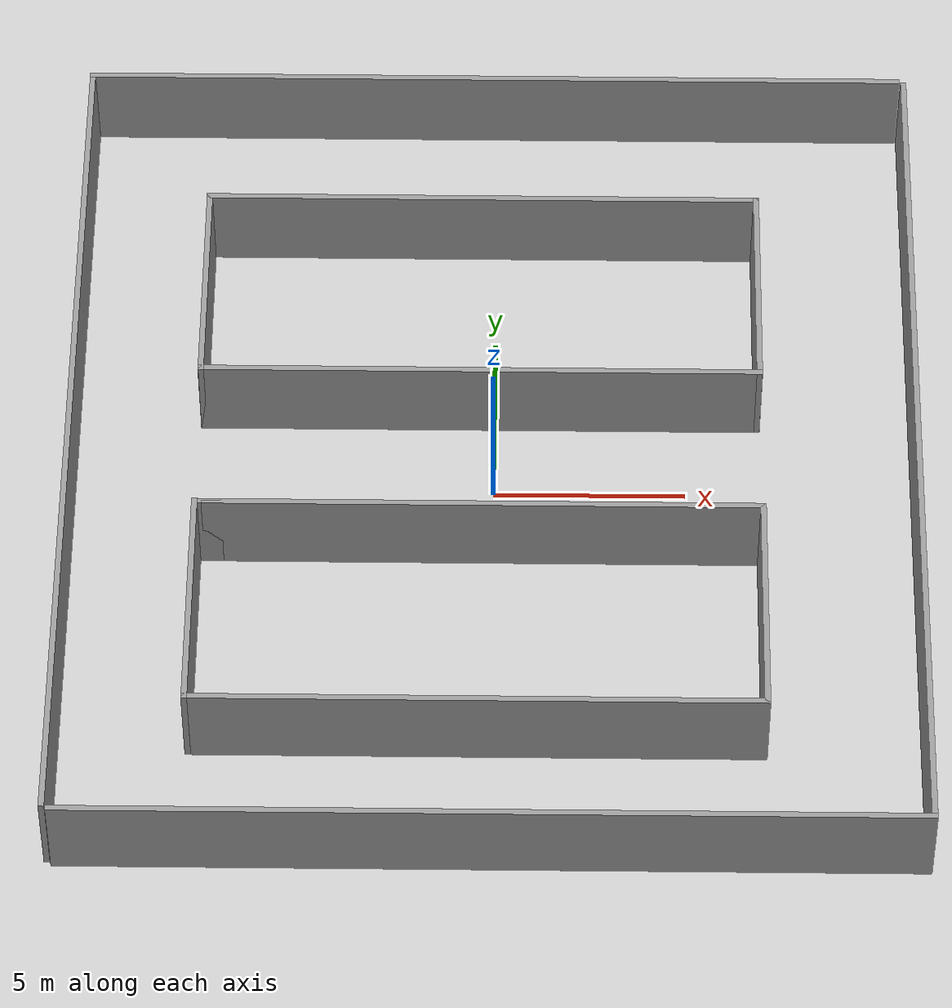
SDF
<sdf version="1.6">
 <world name="default">
  <light name="sun" type="directional">
   <pose>0 0 10 0 -0 0</pose>
   <diffuse>0.8 0.8 0.8 1</diffuse>
   <specular>0.1 0.1 0.1 1</specular>
   <attenuation>
    <range>1000</range>
    <constant>0.9</constant>
    <linear>0.01</linear>
    <quadratic>0.001</quadratic>
   </attenuation>
   <direction>-0.5 0.5 -1</direction>
  </light>
  <model name="ground_plane">
   <static>1</static>
   <link name="link">
    <collision name="collision">
     <geometry><plane><normal>0 0 1</normal><size>100 100</size></plane></geometry>
     <surface><friction><ode><mu>100</mu><mu2>50</mu2></ode></friction></surface>
    </collision>
    <visual name="visual">
     <cast_shadows>0</cast_shadows>
     <geometry><plane><normal>0 0 1</normal><size>100 100</size></plane></geometry>
     <material>
      <script><uri>file://media/materials/scripts/gazebo.material</uri><name>Gazebo/Grey</name></script>
     </material>
    </visual>
   </link>
  </model>
  <gravity>0 0 -9.8</gravity>
  <magnetic_field>6e-06 2.3e-05 -4.2e-05</magnetic_field>
  <atmosphere type="adiabatic"/>
  <physics name="default_physics" default="0" type="ode">
   <max_step_size>0.001</max_step_size>
   <real_time_factor>1</real_time_factor>
   <real_time_update_rate>1000</real_time_update_rate>
  </physics>
  <scene><ambient>0.4 0.4 0.4 1</ambient><background>0.7 0.7 0.7 1</background><shadows>1</shadows></scene>
  <spherical_coordinates>
   <surface_model>EARTH_WGS84</surface_model>
   <latitude_deg>0</latitude_deg>
   <longitude_deg>0</longitude_deg>
   <elevation>0</elevation>
   <heading_deg>0</heading_deg>
  </spherical_coordinates>
  <model name="simple">
   <pose>-0.027762 0.337557 0 0 -0 0</pose>
   <link name="Wall_1">
    <collision name="Wall_1_Collision">
     <geometry><box><size>14.5 0.15 2.5</size></box></geometry>
     <pose>0 0 1.25 0 -0 0</pose>
    </collision>
    <visual name="Wall_1_Visual">
     <pose>0 0 1.25 0 -0 0</pose>
     <geometry><box><size>14.5 0.15 2.5</size></box></geometry>
     <material>
      <script><uri>file://media/materials/scripts/gazebo.material</uri><name>Gazebo/Grey</name></script>
      <ambient>1 1 1 1</ambient>
     </material>
     <meta><layer>0</layer></meta>
    </visual>
    <pose>-0.213153 -2.48064 0 0 -0 0</pose>
   </link>
   <link name="Wall_10">
    <collision name="Wall_10_Collision">
     <geometry><box><size>6 0.15 2.5</size></box></geometry>
     <pose>0 0 1.25 0 -0 0</pose>
    </collision>
    <visual name="Wall_10_Visual">
     <pose>0 0 1.25 0 -0 0</pose>
     <geometry><box><size>6 0.15 2.5</size></box></geometry>
     <material>
      <script><uri>file://media/materials/scripts/gazebo.material</uri><name>Gazebo/Grey</name></script>
      <ambient>1 1 1 1</ambient>
     </material>
     <meta><layer>0</layer></meta>
    </visual>
    <pose>6.94337 4.8062 0 0 -0 1.5708</pose>
   </link>
   <link name="Wall_11">
    <collision name="Wall_11_Collision">
     <geometry><box><size>14.75 0.15 2.5</size></box></geometry>
     <pose>0 0 1.25 0 -0 0</pose>
    </collision>
    <visual name="Wall_11_Visual">
     <pose>0 0 1.25 0 -0 0</pose>
     <geometry><box><size>14.75 0.15 2.5</size></box></geometry>
     <material>
      <script><uri>file://media/materials/scripts/gazebo.material</uri><name>Gazebo/Grey</name></script>
      <ambient>1 1 1 1</ambient>
     </material>
     <meta><layer>0</layer></meta>
    </visual>
    <pose>-0.356633 7.7312 0 0 -0 3.14159</pose>
   </link>
   <link name="Wall_12">
    <collision name="Wall_12_Collision">
     <geometry><box><size>6 0.15 2.5</size></box></geometry>
     <pose>0 0 1.25 0 -0 0</pose>
    </collision>
    <visual name="Wall_12_Visual">
     <pose>0 0 1.25 0 -0 0</pose>
     <geometry><box><size>6 0.15 2.5</size></box></geometry>
     <material>
      <script><uri>file://media/materials/scripts/gazebo.material</uri><name>Gazebo/Grey</name></script>
      <ambient>1 1 1 1</ambient>
     </material>
     <meta><layer>0</layer></meta>
    </visual>
    <pose>-7.65663 4.8062 0 0 0 -1.5708</pose>
   </link>
   <link name="Wall_16">
    <collision name="Wall_16_Collision">
     <geometry><box><size>22 0.15 2.5</size></box></geometry>
     <pose>0 0 1.25 0 -0 0</pose>
    </collision>
    <visual name="Wall_16_Visual">
     <pose>0 0 1.25 0 -0 0</pose>
     <geometry><box><size>22 0.15 2.5</size></box></geometry>
     <material>
      <script><uri>file://media/materials/scripts/gazebo.material</uri><name>Gazebo/Grey</name></script>
      <ambient>1 1 1 1</ambient>
     </material>
     <meta><layer>0</layer></meta>
    </visual>
    <pose>0.088207 -11.982 0 0 -0 0</pose>
   </link>
   <link name="Wall_17">
    <collision name="Wall_17_Collision">
     <geometry><box><size>24 0.15 2.5</size></box></geometry>
     <pose>0 0 1.25 0 -0 0</pose>
    </collision>
    <visual name="Wall_17_Visual">
     <pose>0 0 1.25 0 -0 0</pose>
     <geometry><box><size>24 0.15 2.5</size></box></geometry>
     <material>
      <script><uri>file://media/materials/scripts/gazebo.material</uri><name>Gazebo/Grey</name></script>
      <ambient>1 1 1 1</ambient>
     </material>
     <meta><layer>0</layer></meta>
    </visual>
    <pose>11.0132 -0.056984 0 0 -0 1.5708</pose>
   </link>
   <link name="Wall_22">
    <collision name="Wall_22_Collision">
     <geometry><box><size>24 0.15 2.5</size></box></geometry>
     <pose>0 0 1.25 0 -0 0</pose>
    </collision>
    <visual name="Wall_22_Visual">
     <pose>0 0 1.25 0 -0 0</pose>
     <geometry><box><size>24 0.15 2.5</size></box></geometry>
     <material>
      <script><uri>file://media/materials/scripts/gazebo.material</uri><name>Gazebo/Grey</name></script>
      <ambient>1 1 1 1</ambient>
     </material>
     <meta><layer>0</layer></meta>
    </visual>
    <pose>-11.0132 0.056984 0 0 -0 1.5708</pose>
   </link>
   <link name="Wall_23">
    <collision name="Wall_23_Collision">
     <geometry><box><size>22 0.15 2.5</size></box></geometry>
     <pose>0 0 1.25 0 -0 0</pose>
    </collision>
    <visual name="Wall_23_Visual">
     <pose>0 0 1.25 0 -0 0</pose>
     <geometry><box><size>22 0.15 2.5</size></box></geometry>
     <material>
      <script><uri>file://media/materials/scripts/gazebo.material</uri><name>Gazebo/Grey</name></script>
      <ambient>1 1 1 1</ambient>
     </material>
     <meta><layer>0</layer></meta>
    </visual>
    <pose>-0.088208 11.982 0 0 -0 0</pose>
   </link>
   <link name="Wall_3">
    <collision name="Wall_3_Collision">
     <geometry><box><size>6.25 0.15 2.5</size></box></geometry>
     <pose>0 0 1.25 0 -0 0</pose>
    </collision>
    <visual name="Wall_3_Visual">
     <pose>0 0 1.25 0 -0 0</pose>
     <geometry><box><size>6.25 0.15 2.5</size></box></geometry>
     <material>
      <script><uri>file://media/materials/scripts/gazebo.material</uri><name>Gazebo/Grey</name></script>
      <ambient>1 1 1 1</ambient>
     </material>
     <meta><layer>0</layer></meta>
    </visual>
    <pose>6.96185 -5.53064 0 0 0 -1.5708</pose>
   </link>
   <link name="Wall_4">
    <collision name="Wall_4_Collision">
     <geometry><box><size>14.75 0.15 2.5</size></box></geometry>
     <pose>0 0 1.25 0 -0 0</pose>
    </collision>
    <visual name="Wall_4_Visual">
     <pose>0 0 1.25 0 -0 0</pose>
     <geometry><box><size>14.75 0.15 2.5</size></box></geometry>
     <material>
      <script><uri>file://media/materials/scripts/gazebo.material</uri><name>Gazebo/Grey</name></script>
      <ambient>1 1 1 1</ambient>
     </material>
     <meta><layer>0</layer></meta>
    </visual>
    <pose>-0.338153 -8.58064 0 0 -0 3.14159</pose>
   </link>
   <link name="Wall_5">
    <collision name="Wall_5_Collision">
     <geometry><box><size>6.25 0.15 2.5</size></box></geometry>
     <pose>0 0 1.25 0 -0 0</pose>
    </collision>
    <visual name="Wall_5_Visual">
     <pose>0 0 1.25 0 -0 0</pose>
     <geometry><box><size>6.25 0.15 2.5</size></box></geometry>
     <material>
      <script><uri>file://media/materials/scripts/gazebo.material</uri><name>Gazebo/Grey</name></script>
      <ambient>1 1 1 1</ambient>
     </material>
     <meta><layer>0</layer></meta>
    </visual>
    <pose>-7.63815 -5.53064 0 0 -0 1.5708</pose>
   </link>
   <link name="Wall_6">
    <collision name="Wall_6_Collision">
     <geometry><box><size>0.75 0.15 2.5</size></box></geometry>
     <pose>0 0 1.25 0 -0 0</pose>
    </collision>
    <visual name="Wall_6_Visual">
     <pose>0 0 1.25 0 -0 0</pose>
     <geometry><box><size>0.75 0.15 2.5</size></box></geometry>
     <material>
      <script><uri>file://media/materials/scripts/gazebo.material</uri><name>Gazebo/Grey</name></script>
      <ambient>1 1 1 1</ambient>
     </material>
     <meta><layer>0</layer></meta>
    </visual>
    <pose>-7.33815 -2.48064 0 0 -0 0</pose>
   </link>
   <link name="Wall_8">
    <collision name="Wall_8_Collision">
     <geometry><box><size>14.75 0.15 2.5</size></box></geometry>
     <pose>0 0 1.25 0 -0 0</pose>
    </collision>
    <visual name="Wall_8_Visual">
     <pose>0 0 1.25 0 -0 0</pose>
     <geometry><box><size>14.75 0.15 2.5</size></box></geometry>
     <material>
      <script><uri>file://media/materials/scripts/gazebo.material</uri><name>Gazebo/Grey</name></script>
      <ambient>1 1 1 1</ambient>
     </material>
     <meta><layer>0</layer></meta>
    </visual>
    <pose>-0.356633 1.8812 0 0 -0 0</pose>
   </link>
   <static>1</static>
  </model>
 </world>
</sdf>
